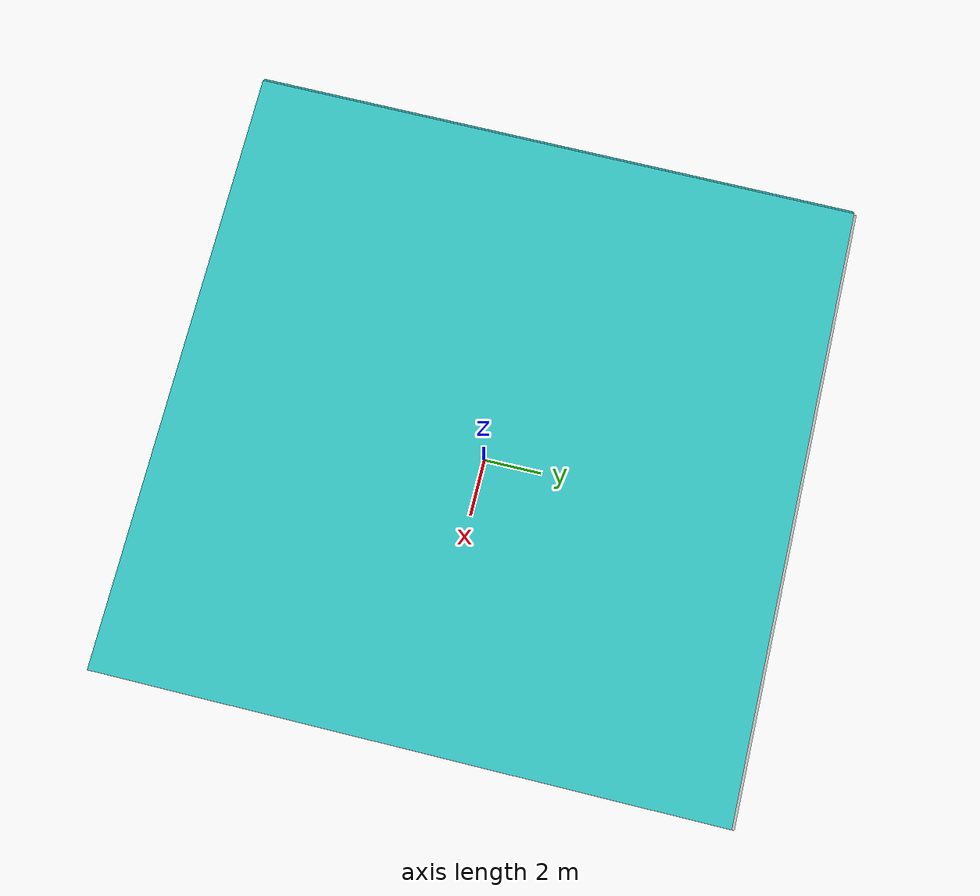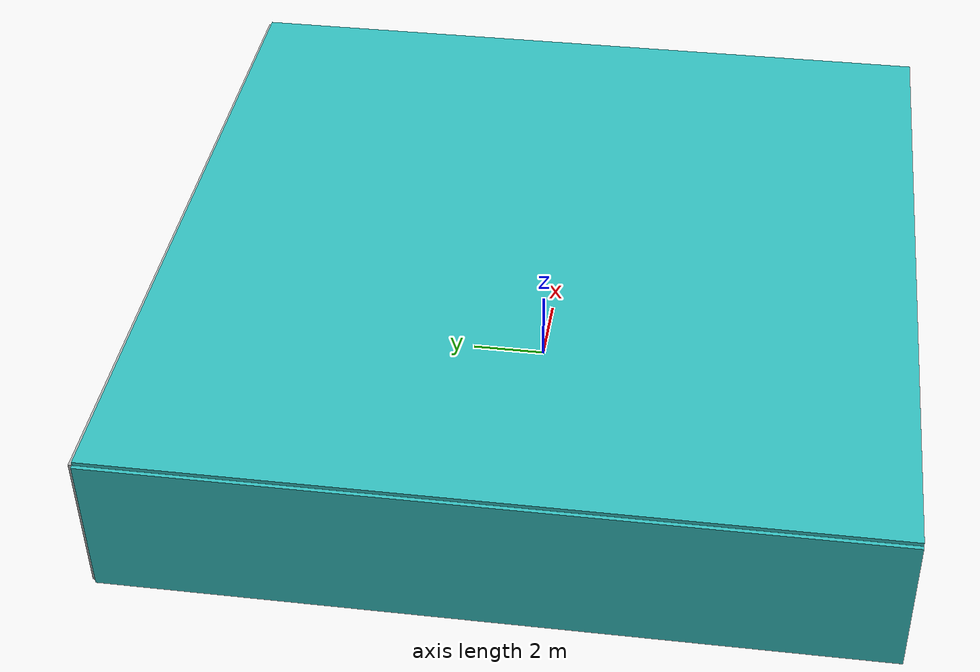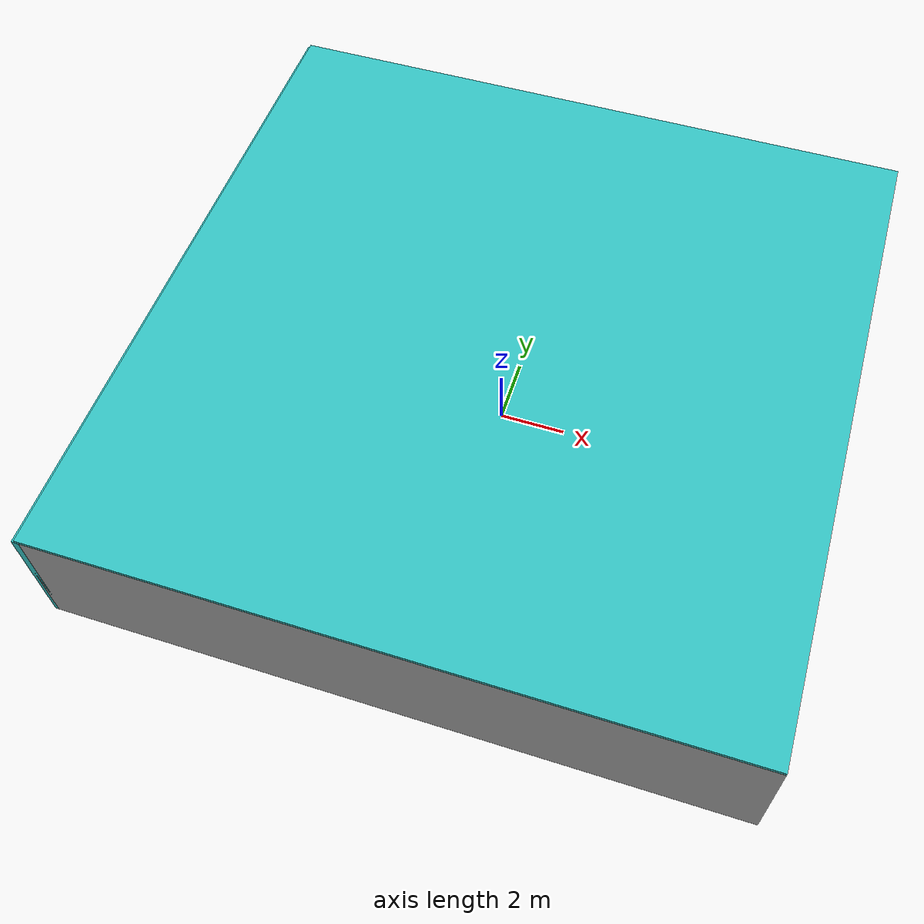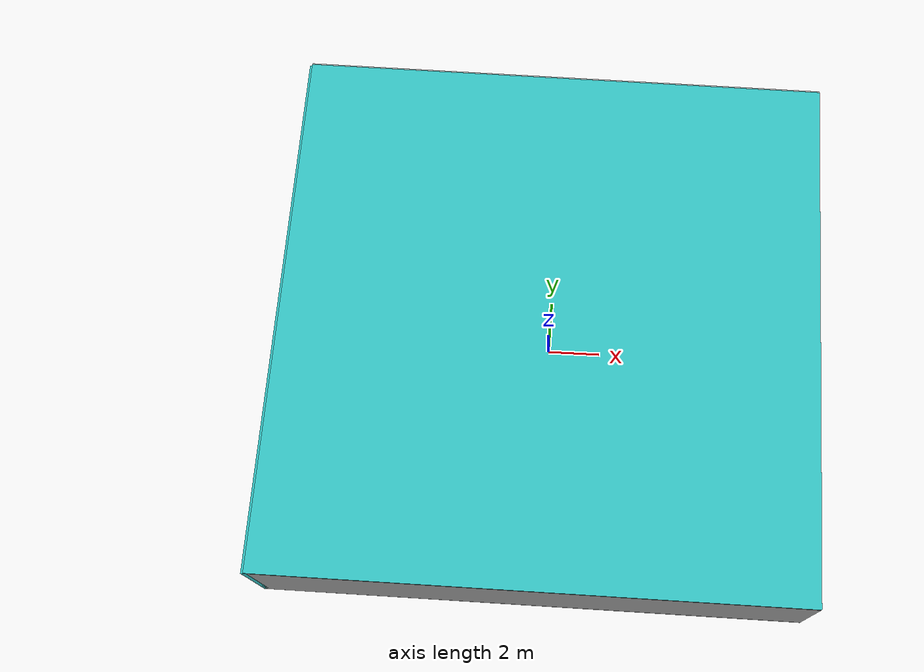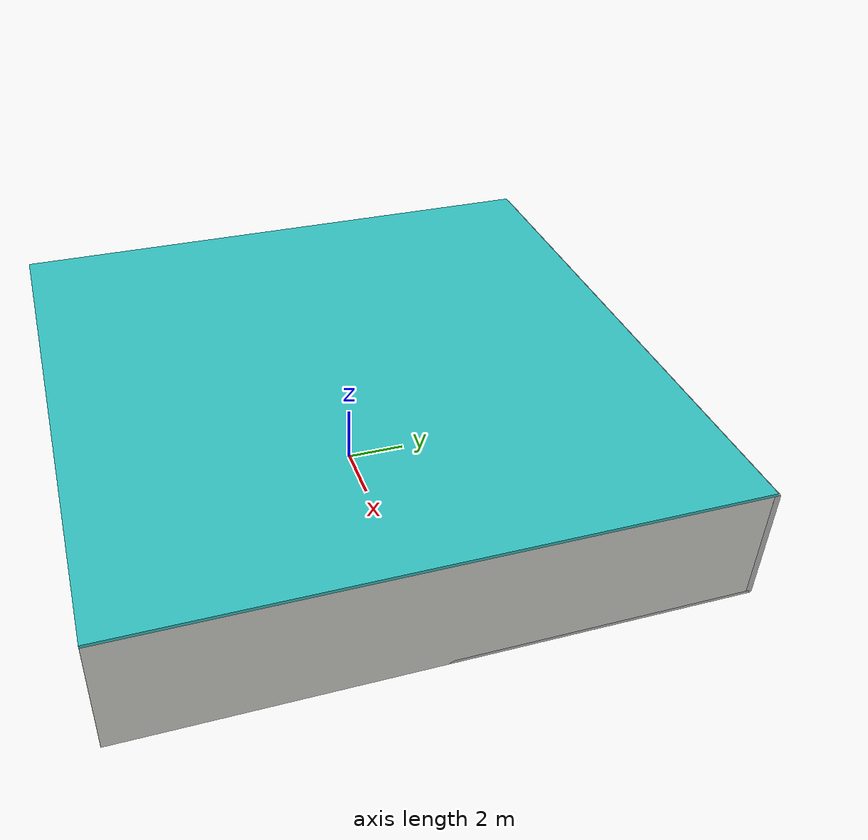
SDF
<sdf version="1.4">
 <world name="default">
  <physics type="ode">
   <max_step_size>0.001</max_step_size>
   <real_time_factor>1</real_time_factor>
   <real_time_update_rate>1000</real_time_update_rate>
   <gravity>0 0 -9.8</gravity>
  </physics>
  <scene><ambient>0.4 0.4 0.4 1</ambient><background>0.7 0.7 0.7 1</background><shadows>1</shadows></scene>
  <model name="Surrounding">
   <static>1</static>
   <link name="Ceiling">
    <collision name="Ceiling_Collision"><geometry><box><size>20 20 0.1</size></box></geometry></collision>
    <visual name="Ceiling_Visual">
     <geometry><box><size>20 20 0.1</size></box></geometry>
     <material>
      <script><uri>file://media/materials/scripts/gazebo.material</uri><name>Gazebo/TurquoiseGlow</name></script>
     </material>
    </visual>
    <pose>0 0 4.05 0 0 0</pose>
   </link>
   <link name="Wall_South">
    <collision name="Wall_South_Collision">
     <geometry><box><size>20 0 4</size></box></geometry>
     <pose>0 0 2 0 -0 0</pose>
    </collision>
    <visual name="Wall_South_Visual">
     <pose>0 0 2 0 -0 0</pose>
     <geometry><box><size>20 0 4</size></box></geometry>
     <material>
      <script><uri>file://media/materials/scripts/gazebo.material</uri><name>Gazebo/Grey</name></script>
     </material>
    </visual>
    <velocity_decay><linear>0</linear><angular>0</angular></velocity_decay>
    <pose>0 -10 0 0 -0 0</pose>
   </link>
   <link name="Wall_East">
    <collision name="Wall_21_Collision">
     <geometry><box><size>20 0 4</size></box></geometry>
     <pose>0 0 2 0 -0 0</pose>
    </collision>
    <visual name="Wall_21_Visual">
     <pose>0 0 2 0 -0 0</pose>
     <geometry><box><size>20 0 4</size></box></geometry>
     <material>
      <script><uri>file://media/materials/scripts/gazebo.material</uri><name>Gazebo/CeilingTiled</name></script>
     </material>
    </visual>
    <velocity_decay><linear>0</linear><angular>0</angular></velocity_decay>
    <pose>10 0 0 0 -0 1.5708</pose>
   </link>
   <link name="Wall_North">
    <collision name="Wall_22_Collision">
     <geometry><box><size>20 0.2 4</size></box></geometry>
     <pose>0 0 2 0 -0 0</pose>
    </collision>
    <visual name="Wall_22_Visual">
     <pose>0 0 2 0 -0 0</pose>
     <geometry><box><size>20 0.2 4</size></box></geometry>
     <material>
      <script><uri>file://media/materials/scripts/gazebo.material</uri><name>Gazebo/Pioneer2Body</name></script>
     </material>
    </visual>
    <velocity_decay><linear>0</linear><angular>0</angular></velocity_decay>
    <pose>0 10 0 0 -0 0</pose>
   </link>
   <link name="Wall_West">
    <collision name="Wall_23_Collision">
     <geometry><box><size>20 0.2 4</size></box></geometry>
     <pose>0 0 2 0 -0 0</pose>
    </collision>
    <visual name="Wall_23_Visual">
     <pose>0 0 2 0 -0 0</pose>
     <geometry><box><size>20 0.2 4</size></box></geometry>
     <material>
      <script><uri>file://media/materials/scripts/gazebo.material</uri><name>Gazebo/TurquoiseGlow</name></script>
     </material>
    </visual>
    <velocity_decay><linear>0</linear><angular>0</angular></velocity_decay>
    <pose>-10 0 0 0 0 -1.5708</pose>
   </link>
   <link name="Ground_link">
    <collision name="collision">
     <pose>0 0 .05 0 -0 0</pose>
     <geometry><box><size>20 20 0.1</size></box></geometry>
    </collision>
    <visual name="visual">
     <pose>0 0 .05 0 -0 0</pose>
     <geometry><box><size>20 20 0.1</size></box></geometry>
     <material>
      <script><uri>file://media/materials/scripts/gazebo.material</uri><name>Gazebo/PioneerBody</name></script>
     </material>
    </visual>
   </link>
   <static>1</static>
  </model>
  <spherical_coordinates>
   <surface_model>EARTH_WGS84</surface_model>
   <latitude_deg>0</latitude_deg>
   <longitude_deg>0</longitude_deg>
   <elevation>0</elevation>
   <heading_deg>0</heading_deg>
  </spherical_coordinates>
  <light name="lightball_0" type="diffuse">
   <diffuse>0.8 0.8 0.8 1</diffuse>
   <specular>0.2 0.2 0.2 1</specular>
   <attenuation>
    <range>100</range>
    <constant>0.7</constant>
    <linear>0.01</linear>
    <quadratic>0.001</quadratic>
   </attenuation>
   <direction>-0.5 0.1 -0.9</direction>
   <pose>-9.05258877521 -8.46007708886 0.573336853952 0 0 0</pose>
  </light>
  <light name="lightball_1" type="diffuse">
   <diffuse>0.8 0.8 0.8 1</diffuse>
   <specular>0.2 0.2 0.2 1</specular>
   <attenuation>
    <range>100</range>
    <constant>0.7</constant>
    <linear>0.01</linear>
    <quadratic>0.001</quadratic>
   </attenuation>
   <direction>-0.5 0.1 -0.9</direction>
   <pose>5.67136770566 -5.84444588783 1.27097112633 0 0 0</pose>
  </light>
  <light name="lightball_2" type="diffuse">
   <diffuse>0.8 0.8 0.8 1</diffuse>
   <specular>0.2 0.2 0.2 1</specular>
   <attenuation>
    <range>100</range>
    <constant>0.7</constant>
    <linear>0.01</linear>
    <quadratic>0.001</quadratic>
   </attenuation>
   <direction>-0.5 0.1 -0.9</direction>
   <pose>8.0328618374 -4.02262080822 3.39101842035 0 0 0</pose>
  </light>
  <light name="lightball_3" type="diffuse">
   <diffuse>0.8 0.8 0.8 1</diffuse>
   <specular>0.2 0.2 0.2 1</specular>
   <attenuation>
    <range>100</range>
    <constant>0.7</constant>
    <linear>0.01</linear>
    <quadratic>0.001</quadratic>
   </attenuation>
   <direction>-0.5 0.1 -0.9</direction>
   <pose>-2.11433110574 3.29570011106 3.4344878578 0 0 0</pose>
  </light>
  <light name="lightball_4" type="diffuse">
   <diffuse>0.8 0.8 0.8 1</diffuse>
   <specular>0.2 0.2 0.2 1</specular>
   <attenuation>
    <range>100</range>
    <constant>0.7</constant>
    <linear>0.01</linear>
    <quadratic>0.001</quadratic>
   </attenuation>
   <direction>-0.5 0.1 -0.9</direction>
   <pose>2.16249462428 -6.14819835811 1.63728140272 0 0 0</pose>
  </light>
  <light name="lightball_5" type="diffuse">
   <diffuse>0.8 0.8 0.8 1</diffuse>
   <specular>0.2 0.2 0.2 1</specular>
   <attenuation>
    <range>100</range>
    <constant>0.7</constant>
    <linear>0.01</linear>
    <quadratic>0.001</quadratic>
   </attenuation>
   <direction>-0.5 0.1 -0.9</direction>
   <pose>-4.3860717896 3.05995297163 2.76362378375 0 0 0</pose>
  </light>
  <light name="lightball_6" type="diffuse">
   <diffuse>0.8 0.8 0.8 1</diffuse>
   <specular>0.2 0.2 0.2 1</specular>
   <attenuation>
    <range>100</range>
    <constant>0.7</constant>
    <linear>0.01</linear>
    <quadratic>0.001</quadratic>
   </attenuation>
   <direction>-0.5 0.1 -0.9</direction>
   <pose>-1.22984805085 2.55487778245 2.97721094011 0 0 0</pose>
  </light>
  <light name="lightball_7" type="diffuse">
   <diffuse>0.8 0.8 0.8 1</diffuse>
   <specular>0.2 0.2 0.2 1</specular>
   <attenuation>
    <range>100</range>
    <constant>0.7</constant>
    <linear>0.01</linear>
    <quadratic>0.001</quadratic>
   </attenuation>
   <direction>-0.5 0.1 -0.9</direction>
   <pose>8.86094973966 2.70638782026 3.26789975472 0 0 0</pose>
  </light>
  <light name="lightball_8" type="diffuse">
   <diffuse>0.8 0.8 0.8 1</diffuse>
   <specular>0.2 0.2 0.2 1</specular>
   <attenuation>
    <range>100</range>
    <constant>0.7</constant>
    <linear>0.01</linear>
    <quadratic>0.001</quadratic>
   </attenuation>
   <direction>-0.5 0.1 -0.9</direction>
   <pose>4.89672316957 2.26424498444 1.28198320215 0 0 0</pose>
  </light>
  <light name="lightball_9" type="diffuse">
   <diffuse>0.8 0.8 0.8 1</diffuse>
   <specular>0.2 0.2 0.2 1</specular>
   <attenuation>
    <range>100</range>
    <constant>0.7</constant>
    <linear>0.01</linear>
    <quadratic>0.001</quadratic>
   </attenuation>
   <direction>-0.5 0.1 -0.9</direction>
   <pose>-1.34706130971 -2.09479546833 3.13221792074 0 0 0</pose>
  </light>
  <light name="lightball_10" type="diffuse">
   <diffuse>0.8 0.8 0.8 1</diffuse>
   <specular>0.2 0.2 0.2 1</specular>
   <attenuation>
    <range>100</range>
    <constant>0.7</constant>
    <linear>0.01</linear>
    <quadratic>0.001</quadratic>
   </attenuation>
   <direction>-0.5 0.1 -0.9</direction>
   <pose>-4.54409925974 -3.33711723135 0.609461241096 0 0 0</pose>
  </light>
  <light name="lightball_11" type="diffuse">
   <diffuse>0.8 0.8 0.8 1</diffuse>
   <specular>0.2 0.2 0.2 1</specular>
   <attenuation>
    <range>100</range>
    <constant>0.7</constant>
    <linear>0.01</linear>
    <quadratic>0.001</quadratic>
   </attenuation>
   <direction>-0.5 0.1 -0.9</direction>
   <pose>-1.77043878211 -6.6868481561 2.57787170598 0 0 0</pose>
  </light>
  <light name="lightball_12" type="diffuse">
   <diffuse>0.8 0.8 0.8 1</diffuse>
   <specular>0.2 0.2 0.2 1</specular>
   <attenuation>
    <range>100</range>
    <constant>0.7</constant>
    <linear>0.01</linear>
    <quadratic>0.001</quadratic>
   </attenuation>
   <direction>-0.5 0.1 -0.9</direction>
   <pose>6.56353843418 5.4499015147 0.626420135689 0 0 0</pose>
  </light>
  <light name="lightball_13" type="diffuse">
   <diffuse>0.8 0.8 0.8 1</diffuse>
   <specular>0.2 0.2 0.2 1</specular>
   <attenuation>
    <range>100</range>
    <constant>0.7</constant>
    <linear>0.01</linear>
    <quadratic>0.001</quadratic>
   </attenuation>
   <direction>-0.5 0.1 -0.9</direction>
   <pose>8.90069001899 -3.52506468385 3.81173350699 0 0 0</pose>
  </light>
  <include><uri>model://cabinet</uri><pose>-7.21271854006 -4.66475418687 0 0 0 1.17554201232</pose></include>
  <include><uri>model://cabinet</uri><pose>-4.60560523319 -4.5464514995 0 0 0 1.00828813961</pose></include>
  <include><uri>model://cabinet</uri><pose>-4.24342597477 0.472750108116 0 0 0 1.288377865</pose></include>
  <include><uri>model://table</uri><pose>-1.84283326608 7.66865639481 0 0 0 1.14524655378</pose></include>
  <include><uri>model://table</uri><pose>2.63675399717 -7.51185837063 0 0 0 0.170810840596</pose></include>
  <include><uri>model://cabinet</uri><pose>5.16080740963 3.55782835829 0 0 0 1.26542282423</pose></include>
 </world>
</sdf>

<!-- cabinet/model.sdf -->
<sdf version="1.5">
  <model name="cabinet">
    <static>true</static>
    <link name="cabinet_bottom_plate">
      <inertial>
        <pose>0 0 -1 0 0 0</pose>
        <inertia>
          <ixx>2.050000</ixx>
          <ixy>0</ixy>
          <ixz>0</ixz>
          <iyy>2.050000</iyy>
          <iyz>0</iyz>
          <izz>2.050000</izz>
        </inertia>
        <mass>25.000000</mass>
      </inertial>
      <collision name="cabinet_bottom_plate_geom">
        <pose>0 0 0.010000 0 0 0</pose>
        <geometry>
          <box>
            <size>0.450000 0.450000 0.020000</size>
          </box>
        </geometry>
      </collision>
      <visual name="cabinet_bottom_plate_geom_visual">
        <pose>0 0 0.010000 0 0 0</pose>
        <geometry>
          <box>
            <size>0.450000 0.450000 0.020000</size>
          </box>
        </geometry>
        <material>
          <script>
            <uri>model://media/materials/scripts/gazebo.material</uri>
            <name>Gazebo/Wood</name>
          </script>
        </material>
      </visual>
      <collision name="cabinet_bottom_plate_geom_cabinet_back_plate">
        <pose>0.235000 0 0.510000 0 0 0</pose>
        <geometry>
          <box>
            <size>0.020000 0.450000 1.020000</size>
          </box>
        </geometry>
      </collision>
      <visual name="cabinet_bottom_plate_geom_cabinet_back_plate_visual">
        <pose>0.235000 0 0.510000 0 0 0</pose>
        <geometry>
          <box>
            <size>0.020000 0.450000 1.020000</size>
          </box>
        </geometry>
        <material>
          <script>
            <uri>model://media/materials/scripts/gazebo.material</uri>
            <name>Gazebo/Wood</name>
          </script>
        </material>
      </visual>
      <collision name="cabinet_bottom_plate_geom_cabinet_left_plate">
        <pose>0 0.235000 0.510000 0 0 0</pose>
        <geometry>
          <box>
            <size>0.450000 0.020000 1.020000</size>
          </box>
        </geometry>
      </collision>
      <visual name="cabinet_bottom_plate_geom_cabinet_left_plate_visual">
        <pose>0 0.235000 0.510000 0 0 0</pose>
        <geometry>
          <box>
            <size>0.450000 0.020000 1.020000</size>
          </box>
        </geometry>
        <material>
          <script>
            <uri>model://media/materials/scripts/gazebo.material</uri>
            <name>Gazebo/Wood</name>
          </script>
        </material>
      </visual>
      <collision name="cabinet_bottom_plate_geom_cabinet_middle_plate">
        <pose>0 0 0.510000 0 0 0</pose>
        <geometry>
          <box>
            <size>0.450000 0.450000 0.020000</size>
          </box>
        </geometry>
      </collision>
      <visual name="cabinet_bottom_plate_geom_cabinet_middle_plate_visual">
        <pose>0 0 0.510000 0 0 0</pose>
        <geometry>
          <box>
            <size>0.450000 0.450000 0.020000</size>
          </box>
        </geometry>
        <material>
          <script>
            <uri>model://media/materials/scripts/gazebo.material</uri>
            <name>Gazebo/Wood</name>
          </script>
        </material>
      </visual>
      <collision name="cabinet_bottom_plate_geom_cabinet_right_plate">
        <pose>0 -0.235000 0.510000 0 0 0</pose>
        <geometry>
          <box>
            <size>0.450000 0.020000 1.020000</size>
          </box>
        </geometry>
      </collision>
      <visual name="cabinet_bottom_plate_geom_cabinet_right_plate_visual">
        <pose>0 -0.235000 0.510000 0 0 0</pose>
        <geometry>
          <box>
            <size>0.450000 0.020000 1.020000</size>
          </box>
        </geometry>
        <material>
          <script>
            <uri>model://media/materials/scripts/gazebo.material</uri>
            <name>Gazebo/Wood</name>
          </script>
        </material>
      </visual>
      <collision name="cabinet_bottom_plate_geom_cabinet_top_plate">
        <pose>0 0 1.010000 0 0 0</pose>
        <geometry>
          <box>
            <size>0.450000 0.450000 0.020000</size>
          </box>
        </geometry>
      </collision>
      <visual name="cabinet_bottom_plate_geom_cabinet_top_plate_visual">
        <pose>0 0 1.010000 0 0 0</pose>
        <geometry>
          <box>
            <size>0.450000 0.450000 0.020000</size>
          </box>
        </geometry>
        <material>
          <script>
            <uri>model://media/materials/scripts/gazebo.material</uri>
            <name>Gazebo/Wood</name>
          </script>
        </material>
      </visual>
    </link>
  </model>
</sdf>

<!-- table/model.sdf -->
<sdf version="1.5">
  <model name="table">
    <static>true</static>
    <link name="link">
      <collision name="surface">
        <pose>0 0 1.0 0 0 0</pose>
        <geometry>
          <box>
            <size>1.5 0.8 0.03</size>
          </box>
        </geometry>
        <surface>
          <friction>
            <ode>
              <mu>0.6</mu>
              <mu2>0.6</mu2>
            </ode>
          </friction>
        </surface>
      </collision>
      <visual name="visual1">
        <pose>0 0 1.0 0 0 0</pose>
        <geometry>
          <box>
            <size>1.5 0.8 0.03</size>
          </box>
        </geometry>
        <material>
          <script>
            <uri>model://media/materials/scripts/gazebo.material</uri>
            <name>Gazebo/Wood</name>
          </script>
        </material>
      </visual>
      <collision name="front_left_leg">
        <pose>0.68 0.38 0.5 0 0 0</pose>
        <geometry>
          <cylinder>
            <radius>0.02</radius>
            <length>1.0</length>
          </cylinder>
        </geometry>
      </collision>
      <visual name="front_left_leg">
        <pose>0.68 0.38 0.5 0 0 0</pose>
        <geometry>
          <cylinder>
            <radius>0.02</radius>
            <length>1.0</length>
          </cylinder>
        </geometry>
        <material>
          <script>
            <uri>model://media/materials/scripts/gazebo.material</uri>
            <name>Gazebo/Grey</name>
          </script>
        </material>
      </visual>
      <collision name="front_right_leg">
        <pose>0.68 -0.38 0.5 0 0 0</pose>
        <geometry>
          <cylinder>
            <radius>0.02</radius>
            <length>1.0</length>
          </cylinder>
        </geometry>
      </collision>
      <visual name="front_right_leg">
        <pose>0.68 -0.38 0.5 0 0 0</pose>
        <geometry>
          <cylinder>
            <radius>0.02</radius>
            <length>1.0</length>
          </cylinder>
        </geometry>
        <material>
          <script>
            <uri>model://media/materials/scripts/gazebo.material</uri>
            <name>Gazebo/Grey</name>
          </script>
        </material>
      </visual>
      <collision name="back_right_leg">
        <pose>-0.68 -0.38 0.5 0 0 0</pose>
        <geometry>
          <cylinder>
            <radius>0.02</radius>
            <length>1.0</length>
          </cylinder>
        </geometry>
      </collision>
      <visual name="back_right_leg">
        <pose>-0.68 -0.38 0.5 0 0 0</pose>
        <geometry>
          <cylinder>
            <radius>0.02</radius>
            <length>1.0</length>
          </cylinder>
        </geometry>
        <material>
          <script>
            <uri>model://media/materials/scripts/gazebo.material</uri>
            <name>Gazebo/Grey</name>
          </script>
        </material>
      </visual>
      <collision name="back_left_leg">
        <pose>-0.68 0.38 0.5 0 0 0</pose>
        <geometry>
          <cylinder>
            <radius>0.02</radius>
            <length>1.0</length>
          </cylinder>
        </geometry>
      </collision>
      <visual name="back_left_leg">
        <pose>-0.68 0.38 0.5 0 0 0</pose>
        <geometry>
          <cylinder>
            <radius>0.02</radius>
            <length>1.0</length>
          </cylinder>
        </geometry>
        <material>
          <script>
            <uri>model://media/materials/scripts/gazebo.material</uri>
            <name>Gazebo/Grey</name>
          </script>
        </material>
      </visual>
    </link>
  </model>
</sdf>
